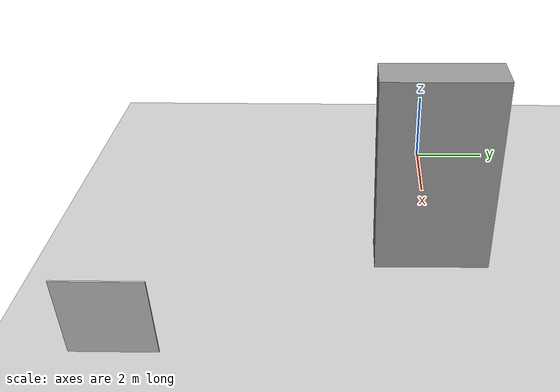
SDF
<sdf version="1.7">
 <world name="default">
  <light name="sun" type="directional">
   <pose>0 0 10 0 -0 0</pose>
   <diffuse>0.8 0.8 0.8 1</diffuse>
   <specular>0.2 0.2 0.2 1</specular>
   <attenuation>
    <range>1000</range>
    <constant>0.9</constant>
    <linear>0.01</linear>
    <quadratic>0.001</quadratic>
   </attenuation>
   <direction>-0.5 0.1 -0.9</direction>
   <spot><inner_angle>0</inner_angle><outer_angle>0</outer_angle><falloff>0</falloff></spot>
  </light>
  <model name="ground_plane">
   <static>1</static>
   <link name="link">
    <collision name="collision">
     <geometry><plane><normal>0 0 1</normal><size>100 100</size></plane></geometry>
     <surface>
      <contact><collide_bitmask>65535</collide_bitmask></contact>
      <friction><ode><mu>100</mu><mu2>50</mu2></ode></friction>
     </surface>
    </collision>
    <visual name="visual">
     <cast_shadows>0</cast_shadows>
     <geometry><plane><normal>0 0 1</normal><size>100 100</size></plane></geometry>
     <material>
      <script><uri>file://media/materials/scripts/gazebo.material</uri><name>Gazebo/Grey</name></script>
     </material>
    </visual>
   </link>
  </model>
  <physics name="default_physics" default="0" type="ode">
   <ode>
    <solver>
     <type>quick</type>
     <iters>10</iters>
     <sor>1.3</sor>
     <use_dynamic_moi_rescaling>0</use_dynamic_moi_rescaling>
    </solver>
    <constraints>
     <cfm>0</cfm>
     <erp>0.2</erp>
     <contact_max_correcting_vel>100</contact_max_correcting_vel>
     <contact_surface_layer>0.001</contact_surface_layer>
    </constraints>
   </ode>
   <max_step_size>0.004</max_step_size>
   <real_time_factor>1</real_time_factor>
   <real_time_update_rate>250</real_time_update_rate>
  </physics>
  <gravity>0 0 -9.8066</gravity>
  <magnetic_field>6e-06 2.3e-05 -4.2e-05</magnetic_field>
  <atmosphere type="adiabatic"/>
  <scene><ambient>0.4 0.4 0.4 1</ambient><background>0.7 0.7 0.7 1</background><shadows>1</shadows></scene>
  <spherical_coordinates>
   <surface_model>EARTH_WGS84</surface_model>
   <latitude_deg>0</latitude_deg>
   <longitude_deg>0</longitude_deg>
   <elevation>0</elevation>
   <heading_deg>0</heading_deg>
  </spherical_coordinates>
  <model name="DICT_ARUCO_ORIGINAL_id1">
   <static>1</static>
   <link name="link">
    <visual name="visual">
     <geometry>
      <mesh><uri>model://dict_aruco_original_id1/meshes/DICT_ARUCO_ORIGINAL_id1.dae</uri><scale>3 3 3</scale></mesh>
     </geometry>
    </visual>
   </link>
   <pose>11.2247 -5.84034 3 0 -0 0</pose>
  </model>
  <model name="unit_box">
   <pose>5.00002 5.7e-05 2.56575 -2.1e-05 5e-06 0.01075</pose>
   <link name="link">
    <inertial>
     <mass>1</mass>
     <inertia>
      <ixx>0.166667</ixx>
      <ixy>0</ixy>
      <ixz>0</ixz>
      <iyy>0.166667</iyy>
      <iyz>0</iyz>
      <izz>0.166667</izz>
     </inertia>
    </inertial>
    <collision name="collision"><geometry><box><size>1 2.88624 5.13148</size></box></geometry></collision>
    <visual name="visual">
     <geometry><box><size>1 2.88624 5.13148</size></box></geometry>
     <material>
      <script><name>Gazebo/Grey</name><uri>file://media/materials/scripts/gazebo.material</uri></script>
     </material>
    </visual>
   </link>
  </model>
 </world>
</sdf>
